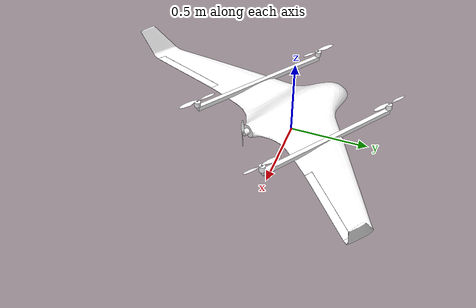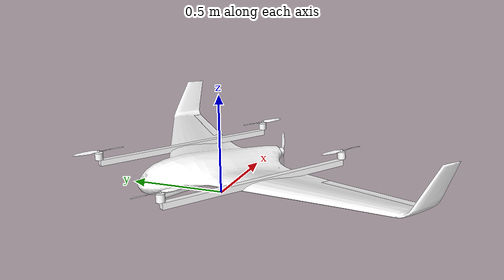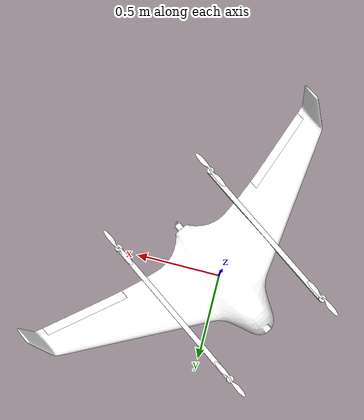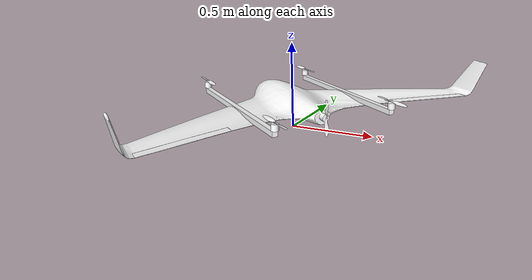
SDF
<sdf version="1.7">
 <world name="sonoma_raceway">
  <plugin filename="libgz-sim-physics-system.so" name="gz::sim::systems::Physics"/>
  <plugin filename="libgz-sim-user-commands-system.so" name="gz::sim::systems::UserCommands"/>
  <plugin filename="libgz-sim-scene-broadcaster-system.so" name="gz::sim::systems::SceneBroadcaster"/>
  <plugin filename="libgz-sim-imu-system.so" name="gz::sim::systems::Imu"/>
  <scene><ambient>1.0 1.0 1.0</ambient><background>0.8 0.8 0.8</background></scene>
  <light type="directional" name="sun">
   <pose>0 0 10 0 0 0</pose>
   <diffuse>0.8 0.8 0.8 1</diffuse>
   <specular>0.8 0.8 0.8 1</specular>
   <attenuation>
    <range>1000</range>
    <constant>0.9</constant>
    <linear>0.01</linear>
    <quadratic>0.001</quadratic>
   </attenuation>
   <direction>-0.5 0.1 -0.9</direction>
  </light>
  <spherical_coordinates>
   <surface_model>EARTH_WGS84</surface_model>
   <latitude_deg>38.161479</latitude_deg>
   <longitude_deg>-122.454630</longitude_deg>
   <elevation>488.0</elevation>
  </spherical_coordinates>
  <include><pose degrees="true">0 0 0.15 0 0 145</pose><uri>model://skywalker_x8_quad</uri></include>
 </world>
</sdf>
